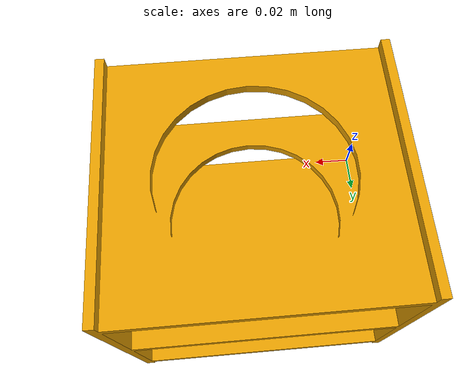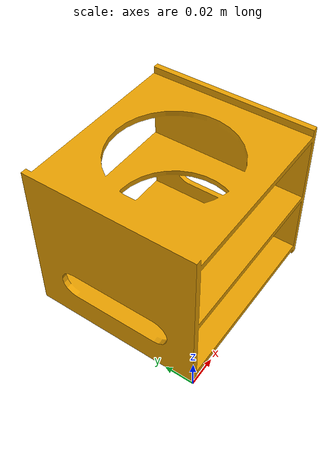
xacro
<?xml version="1.0" ?>
<robot xmlns:xacro="http://www.ros.org/wiki/xacro" name="bottle_container">
    <link name='bottle_container'>
        <visual name='visual'>
            <geometry>
                <mesh filename="meshes/bottle_container.stl"/>
            </geometry>
            <material name="clay" />
        </visual>
    </link>
</robot>
